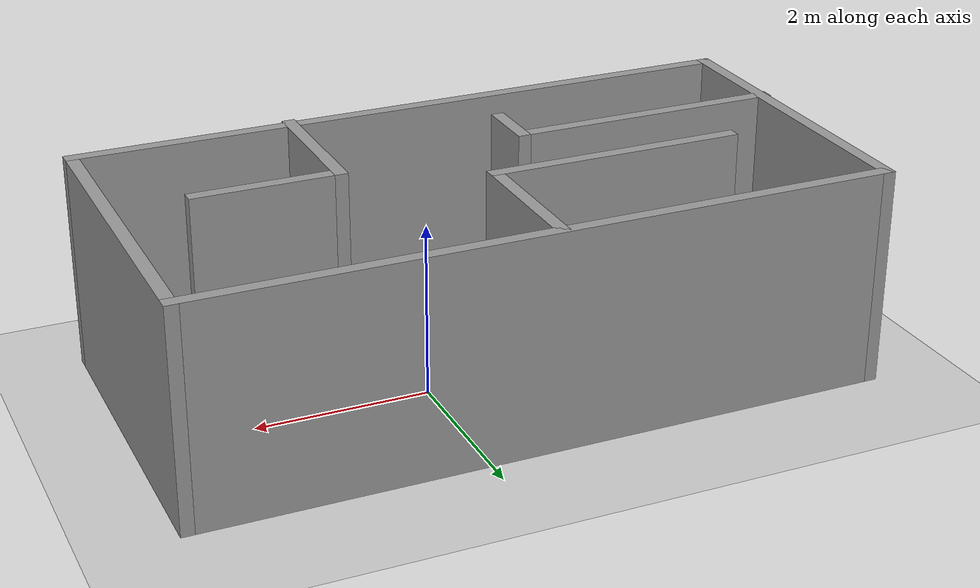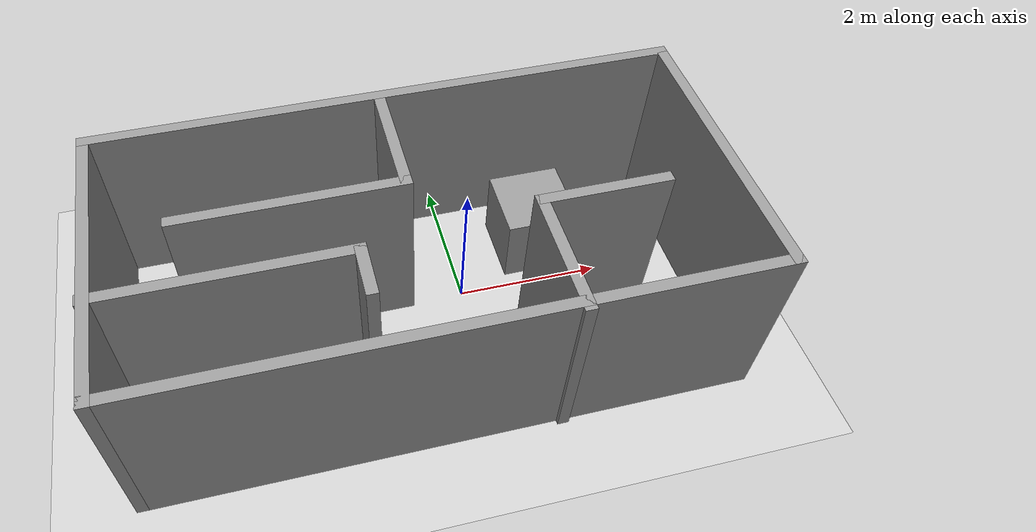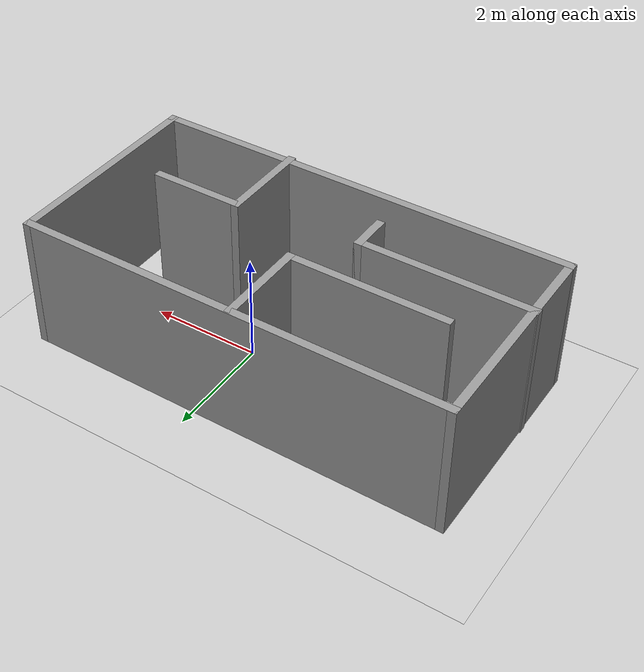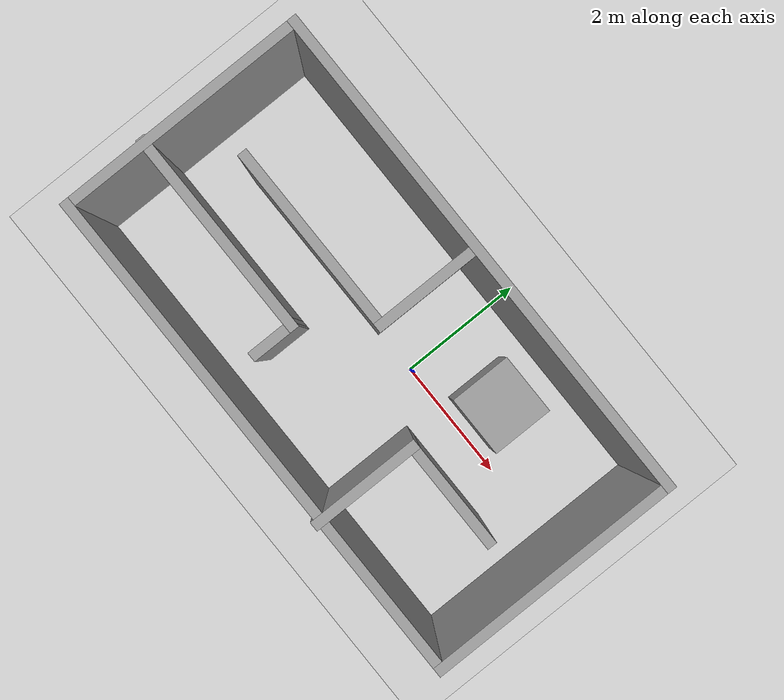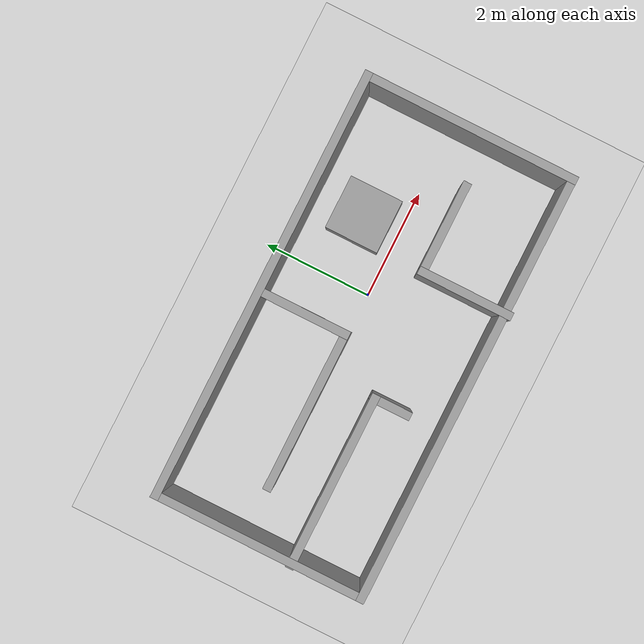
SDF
<sdf version="1.7">
 <world name="default">
  <light name="sun" type="directional">
   <pose>0 0 10 0 -0 0</pose>
   <diffuse>0.8 0.8 0.8 1</diffuse>
   <specular>0.2 0.2 0.2 1</specular>
   <attenuation>
    <range>1000</range>
    <constant>0.9</constant>
    <linear>0.01</linear>
    <quadratic>0.001</quadratic>
   </attenuation>
   <direction>-0.5 0.1 -0.9</direction>
   <spot><inner_angle>0</inner_angle><outer_angle>0</outer_angle><falloff>0</falloff></spot>
  </light>
  <model name="ground_plane">
   <static>1</static>
   <link name="link">
    <collision name="collision">
     <geometry><plane><normal>0 0 1</normal><size>100 100</size></plane></geometry>
     <surface><friction><ode><mu>100</mu><mu2>50</mu2></ode></friction></surface>
    </collision>
    <visual name="visual">
     <cast_shadows>0</cast_shadows>
     <geometry><plane><normal>0 0 1</normal><size>100 100</size></plane></geometry>
     <material>
      <script><uri>file://media/materials/scripts/gazebo.material</uri><name>Gazebo/Grey</name></script>
     </material>
    </visual>
   </link>
  </model>
  <gravity>0 0 -9.8</gravity>
  <magnetic_field>6e-06 2.3e-05 -4.2e-05</magnetic_field>
  <atmosphere type="adiabatic"/>
  <physics type="ode">
   <max_step_size>0.001</max_step_size>
   <real_time_factor>1</real_time_factor>
   <real_time_update_rate>1000</real_time_update_rate>
  </physics>
  <scene><ambient>0.4 0.4 0.4 1</ambient><background>0.7 0.7 0.7 1</background><shadows>1</shadows></scene>
  <audio><device>default</device></audio>
  <spherical_coordinates>
   <surface_model>EARTH_WGS84</surface_model>
   <latitude_deg>0</latitude_deg>
   <longitude_deg>0</longitude_deg>
   <elevation>0</elevation>
   <heading_deg>0</heading_deg>
  </spherical_coordinates>
  <model name="room">
   <pose>-0.698192 0.333796 0 0 -0 0</pose>
   <link name="Wall_0">
    <collision name="Wall_0_Collision">
     <geometry><box><size>8 0.15 2.5</size></box></geometry>
     <pose>0 0 1.25 0 -0 0</pose>
    </collision>
    <visual name="Wall_0_Visual">
     <pose>0 0 1.25 0 -0 0</pose>
     <geometry><box><size>8 0.15 2.5</size></box></geometry>
     <material>
      <script><uri>file://media/materials/scripts/gazebo.material</uri><name>Gazebo/Grey</name></script>
      <ambient>1 1 1 1</ambient>
     </material>
     <meta><layer>0</layer></meta>
    </visual>
    <pose>0.009175 1.31545 0 0 -0 0</pose>
   </link>
   <link name="Wall_1">
    <collision name="Wall_1_Collision">
     <geometry><box><size>4 0.15 2.5</size></box></geometry>
     <pose>0 0 1.25 0 -0 0</pose>
    </collision>
    <visual name="Wall_1_Visual">
     <pose>0 0 1.25 0 -0 0</pose>
     <geometry><box><size>4 0.15 2.5</size></box></geometry>
     <material>
      <script><uri>file://media/materials/scripts/gazebo.material</uri><name>Gazebo/Grey</name></script>
      <ambient>1 1 1 1</ambient>
     </material>
     <meta><layer>0</layer></meta>
    </visual>
    <pose>3.93418 -0.609546 0 0 -0 -1.5708</pose>
   </link>
   <link name="Wall_11">
    <collision name="Wall_11_Collision">
     <geometry><box><size>1.75 0.15 2.5</size></box></geometry>
     <pose>0 0 1.25 0 -0 0</pose>
    </collision>
    <visual name="Wall_11_Visual">
     <pose>0 0 1.25 0 -0 0</pose>
     <geometry><box><size>1.75 0.15 2.5</size></box></geometry>
     <material>
      <script><uri>file://media/materials/scripts/gazebo.material</uri><name>Gazebo/Grey</name></script>
      <ambient>1 1 1 1</ambient>
     </material>
     <meta><layer>0</layer></meta>
    </visual>
    <pose>1.41932 -1.79045 0 0 -0 1.5708</pose>
   </link>
   <link name="Wall_12">
    <collision name="Wall_12_Collision">
     <geometry><box><size>1.75 0.15 2.5</size></box></geometry>
     <pose>0 0 1.25 0 -0 0</pose>
    </collision>
    <visual name="Wall_12_Visual">
     <pose>0 0 1.25 0 -0 0</pose>
     <geometry><box><size>1.75 0.15 2.5</size></box></geometry>
     <material>
      <script><uri>file://media/materials/scripts/gazebo.material</uri><name>Gazebo/Grey</name></script>
      <ambient>1 1 1 1</ambient>
     </material>
     <meta><layer>0</layer></meta>
    </visual>
    <pose>2.21932 -0.990455 0 0 -0 0</pose>
   </link>
   <link name="Wall_2">
    <collision name="Wall_2_Collision">
     <geometry><box><size>8 0.15 2.5</size></box></geometry>
     <pose>0 0 1.25 0 -0 0</pose>
    </collision>
    <visual name="Wall_2_Visual">
     <pose>0 0 1.25 0 -0 0</pose>
     <geometry><box><size>8 0.15 2.5</size></box></geometry>
     <material>
      <script><uri>file://media/materials/scripts/gazebo.material</uri><name>Gazebo/Grey</name></script>
      <ambient>1 1 1 1</ambient>
     </material>
     <meta><layer>0</layer></meta>
    </visual>
    <pose>0.009175 -2.53455 0 0 -0 3.14159</pose>
   </link>
   <link name="Wall_3">
    <collision name="Wall_3_Collision">
     <geometry><box><size>4 0.15 2.5</size></box></geometry>
     <pose>0 0 1.25 0 -0 0</pose>
    </collision>
    <visual name="Wall_3_Visual">
     <pose>0 0 1.25 0 -0 0</pose>
     <geometry><box><size>4 0.15 2.5</size></box></geometry>
     <material>
      <script><uri>file://media/materials/scripts/gazebo.material</uri><name>Gazebo/Grey</name></script>
      <ambient>1 1 1 1</ambient>
     </material>
     <meta><layer>0</layer></meta>
    </visual>
    <pose>-3.91582 -0.609546 0 0 -0 1.5708</pose>
   </link>
   <link name="Wall_5">
    <collision name="Wall_5_Collision">
     <geometry><box><size>1.75 0.15 2.5</size></box></geometry>
     <pose>0 0 1.25 0 -0 0</pose>
    </collision>
    <visual name="Wall_5_Visual">
     <pose>0 0 1.25 0 -0 0</pose>
     <geometry><box><size>1.75 0.15 2.5</size></box></geometry>
     <material>
      <script><uri>file://media/materials/scripts/gazebo.material</uri><name>Gazebo/Grey</name></script>
      <ambient>1 1 1 1</ambient>
     </material>
     <meta><layer>0</layer></meta>
    </visual>
    <pose>-0.092966 0.496124 0 0 -0 -1.5708</pose>
   </link>
   <link name="Wall_6">
    <collision name="Wall_6_Collision">
     <geometry><box><size>3 0.15 2.5</size></box></geometry>
     <pose>0 0 1.25 0 -0 0</pose>
    </collision>
    <visual name="Wall_6_Visual">
     <pose>0 0 1.25 0 -0 0</pose>
     <geometry><box><size>3 0.15 2.5</size></box></geometry>
     <material>
      <script><uri>file://media/materials/scripts/gazebo.material</uri><name>Gazebo/Grey</name></script>
      <ambient>1 1 1 1</ambient>
     </material>
     <meta><layer>0</layer></meta>
    </visual>
    <pose>-1.51797 -0.303876 0 0 -0 3.14159</pose>
   </link>
   <link name="Wall_8">
    <collision name="Wall_8_Collision">
     <geometry><box><size>3.25 0.15 2.5</size></box></geometry>
     <pose>0 0 1.25 0 -0 0</pose>
    </collision>
    <visual name="Wall_8_Visual">
     <pose>0 0 1.25 0 -0 0</pose>
     <geometry><box><size>3.25 0.15 2.5</size></box></geometry>
     <material>
      <script><uri>file://media/materials/scripts/gazebo.material</uri><name>Gazebo/Grey</name></script>
      <ambient>1 1 1 1</ambient>
     </material>
     <meta><layer>0</layer></meta>
    </visual>
    <pose>-2.38418 -1.2294 0 0 -0 0</pose>
   </link>
   <link name="Wall_9">
    <collision name="Wall_9_Collision">
     <geometry><box><size>0.75 0.15 2.5</size></box></geometry>
     <pose>0 0 1.25 0 -0 0</pose>
    </collision>
    <visual name="Wall_9_Visual">
     <pose>0 0 1.25 0 -0 0</pose>
     <geometry><box><size>0.75 0.15 2.5</size></box></geometry>
     <material>
      <script><uri>file://media/materials/scripts/gazebo.material</uri><name>Gazebo/Grey</name></script>
      <ambient>1 1 1 1</ambient>
     </material>
     <meta><layer>0</layer></meta>
    </visual>
    <pose>-0.834175 -1.5294 0 0 -0 -1.5708</pose>
   </link>
   <static>1</static>
  </model>
  <model name="unit_box">
   <pose>1.20566 0.689211 0.5 0 -0 0</pose>
   <link name="link">
    <inertial>
     <mass>1</mass>
     <inertia>
      <ixx>0.166667</ixx>
      <ixy>0</ixy>
      <ixz>0</ixz>
      <iyy>0.166667</iyy>
      <iyz>0</iyz>
      <izz>0.166667</izz>
     </inertia>
    </inertial>
    <collision name="collision"><geometry><box><size>1 1 1</size></box></geometry></collision>
    <visual name="visual">
     <geometry><box><size>1 1 1</size></box></geometry>
     <material>
      <script><name>Gazebo/Grey</name><uri>file://media/materials/scripts/gazebo.material</uri></script>
     </material>
    </visual>
   </link>
  </model>
 </world>
</sdf>
